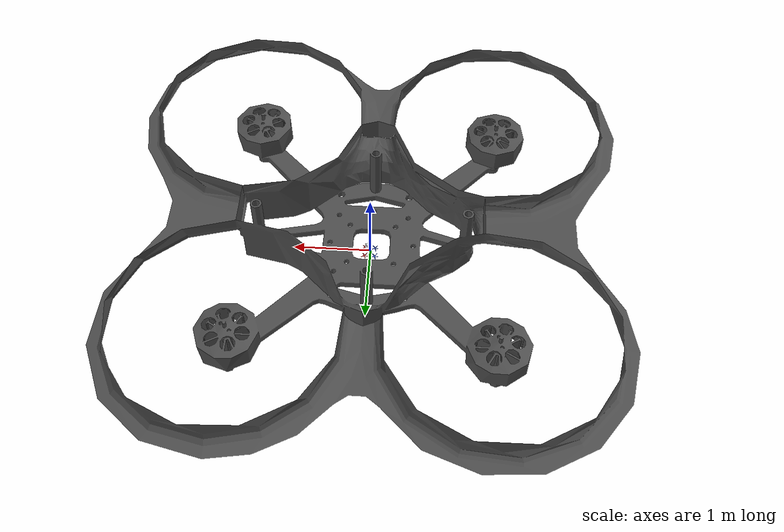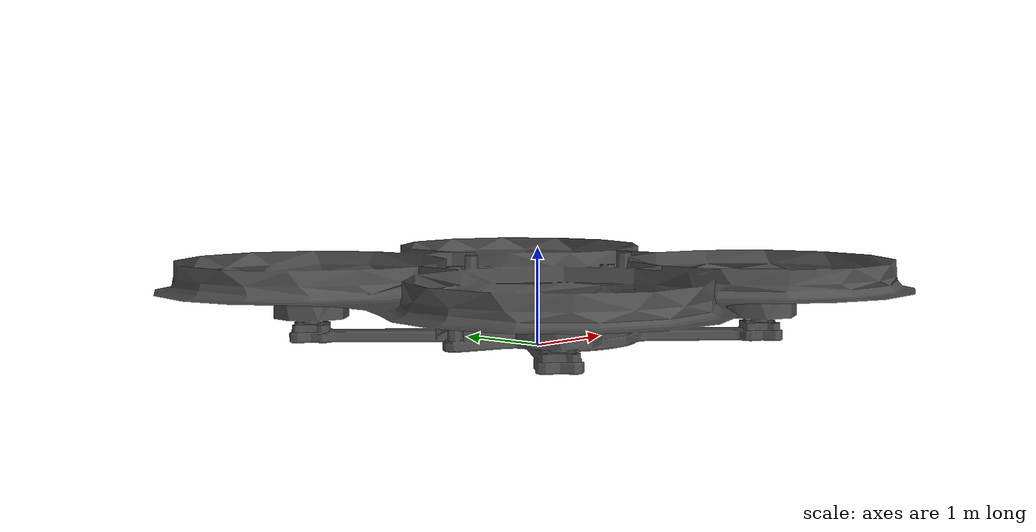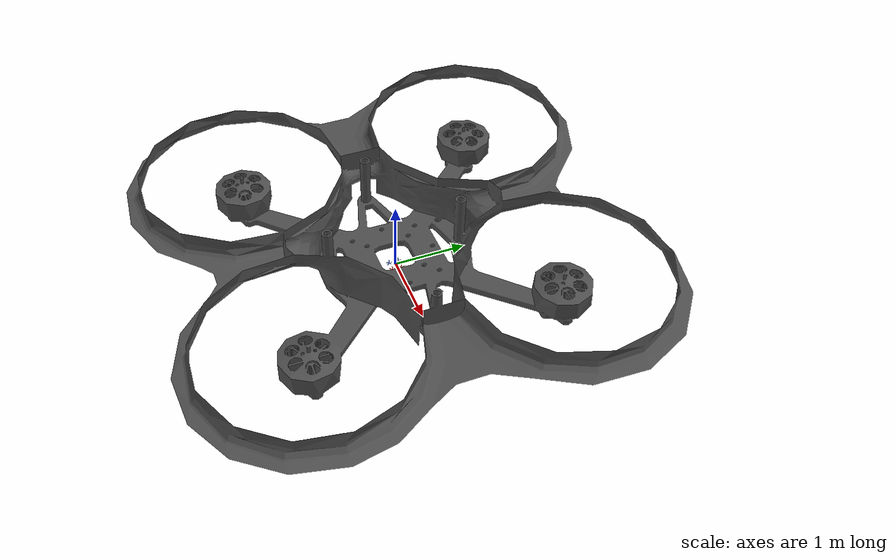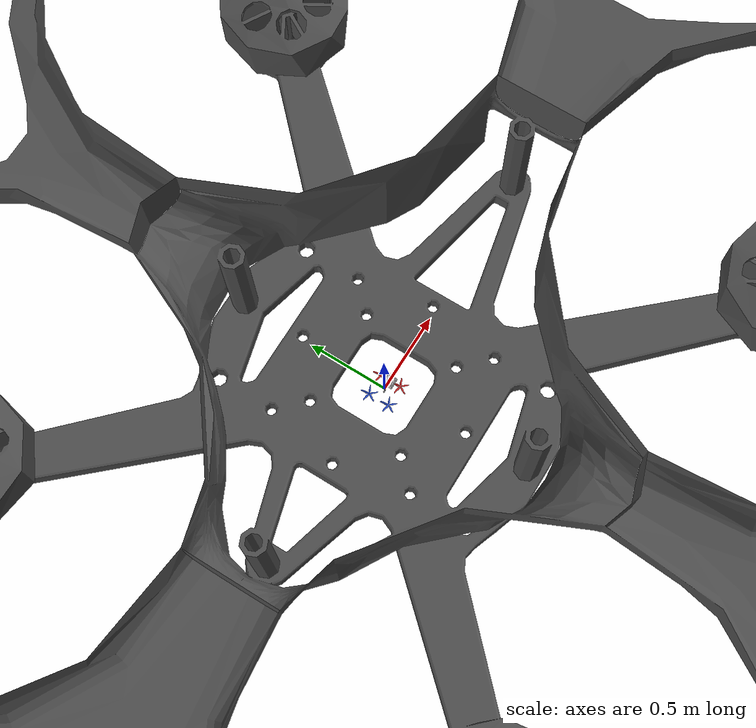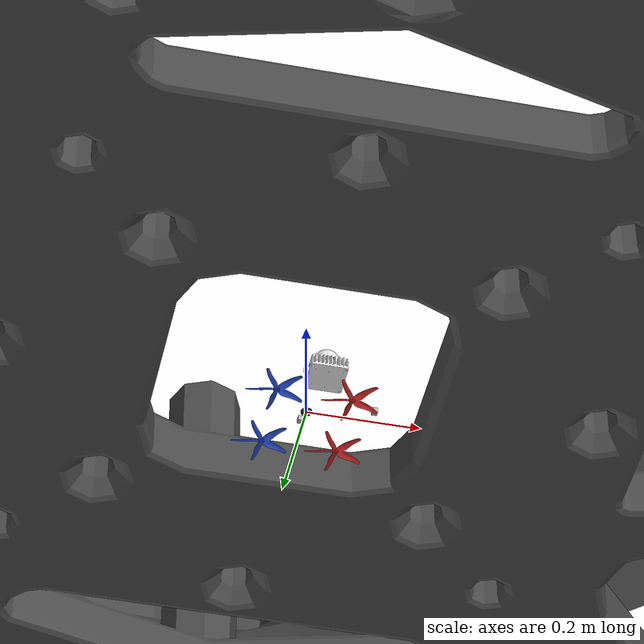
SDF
<?xml version='1.0'?>
<sdf version='1.6'>
  <model name='sunray150_with_mid360'>
    <!-- sunray body -->
    <link name='base_link'>
      <pose>0 0 0 0 0 0</pose>
      <inertial>
        <pose>0 0 0 0 0 0</pose>
        <mass>1.0</mass>
        <inertia>
          <ixx>0.0085</ixx>
          <ixy>0</ixy>
          <ixz>0</ixz>
          <iyy>0.0085</iyy>
          <iyz>0</iyz>
          <izz>0.012</izz>
        </inertia>
      </inertial>
      <collision name='base_link_inertia_collision'>
        <pose>0 0 -0.012 0 0 0</pose>
        <geometry>
          <box>
						<size>0.2 0.15 0.06</size>
          </box>
        </geometry>
        <surface>
          <contact>
            <ode>
              <min_depth>0.001</min_depth>
              <max_vel>0</max_vel>
            </ode>
          </contact>
          <friction>
            <ode/>
          </friction>
        </surface>
      </collision>
      <visual name='base_link_inertia_visual'>
        <pose>0 0 0.0525 0 0 -1.57</pose>
        <geometry>
          <mesh>
            <scale>0.03 0.03 0.03</scale>
            <uri>model://sunray150_with_mid360/meshes/sunray.stl</uri>
          </mesh>
        </geometry>
        <material>
          <script>
            <name>Gazebo/DarkGrey</name>
            <uri>file://media/materials/scripts/gazebo.material</uri>
          </script>
        </material>
      </visual>
      <gravity>1</gravity>
      <velocity_decay/>
      <self_collide>0</self_collide>
    </link>
    <link name='imu_link'>
      <pose>0 0 0 0 0 0</pose>
      <inertial>
        <pose>0 0 0 0 0 0</pose>
        <mass>0.015</mass>
        <inertia>
          <ixx>1e-05</ixx>
          <ixy>0</ixy>
          <ixz>0</ixz>
          <iyy>1e-05</iyy>
          <iyz>0</iyz>
          <izz>1e-05</izz>
        </inertia>
      </inertial>
    </link>
    <joint name='imu_joint' type='revolute'>
      <child>imu_link</child>
      <parent>base_link</parent>
      <axis>
        <xyz>1 0 0</xyz>
        <limit>
          <lower>0</lower>
          <upper>0</upper>
          <effort>0</effort>
          <velocity>0</velocity>
        </limit>
        <dynamics>
          <spring_reference>0</spring_reference>
          <spring_stiffness>0</spring_stiffness>
        </dynamics>
        <use_parent_model_frame>1</use_parent_model_frame>
      </axis>
    </joint>
    <link name='rotor_0'>
			<pose>0.065 -0.065 -0.025 0 0 0</pose>
      <inertial>
        <pose>0 0 0 0 0 0</pose>
        <mass>0.005</mass>
        <inertia>
          <ixx>9.75e-07</ixx>
          <ixy>0</ixy>
          <ixz>0</ixz>
          <iyy>0.000173104</iyy>
          <iyz>0</iyz>
          <izz>0.000174004</izz>
        </inertia>
      </inertial>
      <collision name='rotor_0_collision'>
        <pose>0 0 0 0 0 0</pose>
        <geometry>
          <cylinder>
            <length>0.005</length>
            <radius>0.05</radius>
          </cylinder>
        </geometry>
        <surface>
          <contact>
            <ode/>
          </contact>
          <friction>
            <ode/>
          </friction>
        </surface>
      </collision>
      <visual name='rotor_0_visual'>
        <pose>0 0 0 1.57 0 0</pose>
        <geometry>
          <mesh>
            <scale>0.03 0.03 0.03</scale>
            <uri>model://sunray150/meshes/sunray_cw.stl</uri>
          </mesh>
        </geometry>
        <material>
          <script>
            <name>Gazebo/Red</name>
            <uri>file://media/materials/scripts/gazebo.material</uri>
          </script>
        </material>
      </visual>
      <gravity>1</gravity>
      <velocity_decay/>
      <self_collide>0</self_collide>
    </link>
    <joint name='rotor_0_joint' type='revolute'>
      <child>rotor_0</child>
      <parent>base_link</parent>
      <axis>
        <xyz>0 0 1</xyz>
        <limit>
          <lower>-1e+16</lower>
          <upper>1e+16</upper>
        </limit>
        <dynamics>
          <spring_reference>0</spring_reference>
          <spring_stiffness>0</spring_stiffness>
        </dynamics>
        <use_parent_model_frame>1</use_parent_model_frame>
      </axis>
    </joint>
    <link name='rotor_1'>
			<pose>-0.065 0.065 -0.025 0 0 0</pose>
      <inertial>
        <pose>0 0 0 0 0 0</pose>
        <mass>0.005</mass>
        <inertia>
          <ixx>9.75e-07</ixx>
          <ixy>0</ixy>
          <ixz>0</ixz>
          <iyy>0.000173104</iyy>
          <iyz>0</iyz>
          <izz>0.000174004</izz>
        </inertia>
      </inertial>
      <collision name='rotor_1_collision'>
        <pose>0 0 0 0 0 0</pose>
        <geometry>
          <cylinder>
            <length>0.005</length>
            <radius>0.05</radius>
          </cylinder>
        </geometry>
        <surface>
          <contact>
            <ode/>
          </contact>
          <friction>
            <ode/>
          </friction>
        </surface>
      </collision>
      <visual name='rotor_1_visual'>
        <pose>0 0 0 1.57 0 0</pose>
        <geometry>
          <mesh>
            <scale>0.03 0.03 0.03</scale>
            <uri>model://sunray150/meshes/sunray_cw.stl</uri>
          </mesh>
        </geometry>
        <material>
          <script>
            <name>Gazebo/Blue</name>
            <uri>file://media/materials/scripts/gazebo.material</uri>
          </script>
        </material>
      </visual>
      <gravity>1</gravity>
      <velocity_decay/>
      <self_collide>0</self_collide>
    </link>
    <joint name='rotor_1_joint' type='revolute'>
      <child>rotor_1</child>
      <parent>base_link</parent>
      <axis>
        <xyz>0 0 1</xyz>
        <limit>
          <lower>-1e+16</lower>
          <upper>1e+16</upper>
        </limit>
        <dynamics>
          <spring_reference>0</spring_reference>
          <spring_stiffness>0</spring_stiffness>
        </dynamics>
        <use_parent_model_frame>1</use_parent_model_frame>
      </axis>
    </joint>
    <link name='rotor_2'>
			<pose>0.065 0.065 -0.025 0 0 0</pose>
      <inertial>
        <pose>0 0 0 0 0 0</pose>
        <mass>0.005</mass>
        <inertia>
          <ixx>9.75e-07</ixx>
          <ixy>0</ixy>
          <ixz>0</ixz>
          <iyy>0.000173104</iyy>
          <iyz>0</iyz>
          <izz>0.000174004</izz>
        </inertia>
      </inertial>
      <collision name='rotor_2_collision'>
        <pose>0 0 0 0 0 0</pose>
        <geometry>
          <cylinder>
            <length>0.005</length>
            <radius>0.05</radius>
          </cylinder>
        </geometry>
        <surface>
          <contact>
            <ode/>
          </contact>
          <friction>
            <ode/>
          </friction>
        </surface>
      </collision>
      <visual name='rotor_2_visual'>
        <pose>0 0 0 1.57 0 0</pose>
        <geometry>
          <mesh>
            <scale>0.03 0.03 0.03</scale>
            <uri>model://sunray150/meshes/sunray_cw.stl</uri>
          </mesh>
        </geometry>
        <material>
          <script>
            <name>Gazebo/Red</name>
            <uri>file://media/materials/scripts/gazebo.material</uri>
          </script>
        </material>
      </visual>
      <gravity>1</gravity>
      <velocity_decay/>
      <self_collide>0</self_collide>
    </link>
    <joint name='rotor_2_joint' type='revolute'>
      <child>rotor_2</child>
      <parent>base_link</parent>
      <axis>
        <xyz>0 0 1</xyz>
        <limit>
          <lower>-1e+16</lower>
          <upper>1e+16</upper>
        </limit>
        <dynamics>
          <spring_reference>0</spring_reference>
          <spring_stiffness>0</spring_stiffness>
        </dynamics>
        <use_parent_model_frame>1</use_parent_model_frame>
      </axis>
    </joint>
    <link name='rotor_3'>
			<pose>-0.065 -0.065 -0.025 0 0 0</pose>
      <inertial>
        <pose>0 0 0 0 0 0</pose>
        <mass>0.005</mass>
        <inertia>
          <ixx>9.75e-07</ixx>
          <ixy>0</ixy>
          <ixz>0</ixz>
          <iyy>0.000173104</iyy>
          <iyz>0</iyz>
          <izz>0.000174004</izz>
        </inertia>
      </inertial>
      <collision name='rotor_3_collision'>
        <pose>0 0 0 0 0 0</pose>
        <geometry>
          <cylinder>
            <length>0.005</length>
            <radius>0.05</radius>
          </cylinder>
        </geometry>
        <surface>
          <contact>
            <ode/>
          </contact>
          <friction>
            <ode/>
          </friction>
        </surface>
      </collision>
      <visual name='rotor_3_visual'>
        <pose>0 0 0 1.57 0 0</pose>
        <geometry>
          <mesh>
            <scale>0.03 0.03 0.03</scale>
            <uri>model://sunray150/meshes/sunray_cw.stl</uri>
          </mesh>
        </geometry>
        <material>
          <script>
            <name>Gazebo/Blue</name>
            <uri>file://media/materials/scripts/gazebo.material</uri>
          </script>
        </material>
      </visual>
      <gravity>1</gravity>
      <velocity_decay/>
      <self_collide>0</self_collide>
    </link>
    <joint name='rotor_3_joint' type='revolute'>
      <child>rotor_3</child>
      <parent>base_link</parent>
      <axis>
        <xyz>0 0 1</xyz>
        <limit>
          <lower>-1e+16</lower>
          <upper>1e+16</upper>
        </limit>
        <dynamics>
          <spring_reference>0</spring_reference>
          <spring_stiffness>0</spring_stiffness>
        </dynamics>
        <use_parent_model_frame>1</use_parent_model_frame>
      </axis>
    </joint>
    <include>
      <uri>model://gps</uri>
      <pose>0.0 0 0 0 0 0</pose>
      <name>gps</name>
    </include>
    <joint name='gps_joint' type='fixed'>
      <child>gps::link</child>
      <parent>base_link</parent>
    </joint>

    <plugin name='rosbag' filename='libgazebo_multirotor_base_plugin.so'>
      <robotNamespace></robotNamespace>
      <linkName>base_link</linkName>
      <rotorVelocitySlowdownSim>10</rotorVelocitySlowdownSim>
    </plugin>
    <plugin name='front_right_motor_model' filename='libgazebo_motor_model.so'>
      <robotNamespace></robotNamespace>
      <jointName>rotor_0_joint</jointName>
      <linkName>rotor_0</linkName>
      <turningDirection>ccw</turningDirection>
      <timeConstantUp>0.0125</timeConstantUp>
      <timeConstantDown>0.025</timeConstantDown>
      <maxRotVelocity>1500</maxRotVelocity>
      <motorConstant>8.54858e-06</motorConstant>
      <momentConstant>0.06</momentConstant>
      <commandSubTopic>/gazebo/command/motor_speed</commandSubTopic>
      <motorNumber>0</motorNumber>
      <rotorDragCoefficient>0.000806428</rotorDragCoefficient>
      <rollingMomentCoefficient>1e-06</rollingMomentCoefficient>
      <motorSpeedPubTopic>/motor_speed/0</motorSpeedPubTopic>
      <rotorVelocitySlowdownSim>10</rotorVelocitySlowdownSim>
    </plugin>
    <plugin name='back_left_motor_model' filename='libgazebo_motor_model.so'>
      <robotNamespace></robotNamespace>
      <jointName>rotor_1_joint</jointName>
      <linkName>rotor_1</linkName>
      <turningDirection>ccw</turningDirection>
      <timeConstantUp>0.0125</timeConstantUp>
      <timeConstantDown>0.025</timeConstantDown>
      <maxRotVelocity>1500</maxRotVelocity>
      <motorConstant>8.54858e-06</motorConstant>
      <momentConstant>0.06</momentConstant>
      <commandSubTopic>/gazebo/command/motor_speed</commandSubTopic>
      <motorNumber>1</motorNumber>
      <rotorDragCoefficient>0.000806428</rotorDragCoefficient>
      <rollingMomentCoefficient>1e-06</rollingMomentCoefficient>
      <motorSpeedPubTopic>/motor_speed/1</motorSpeedPubTopic>
      <rotorVelocitySlowdownSim>10</rotorVelocitySlowdownSim>
    </plugin>
    <plugin name='front_left_motor_model' filename='libgazebo_motor_model.so'>
      <robotNamespace></robotNamespace>
      <jointName>rotor_2_joint</jointName>
      <linkName>rotor_2</linkName>
      <turningDirection>cw</turningDirection>
      <timeConstantUp>0.0125</timeConstantUp>
      <timeConstantDown>0.025</timeConstantDown>
      <maxRotVelocity>1500</maxRotVelocity>
      <motorConstant>8.54858e-06</motorConstant>
      <momentConstant>0.06</momentConstant>
      <commandSubTopic>/gazebo/command/motor_speed</commandSubTopic>
      <motorNumber>2</motorNumber>
      <rotorDragCoefficient>0.000806428</rotorDragCoefficient>
      <rollingMomentCoefficient>1e-06</rollingMomentCoefficient>
      <motorSpeedPubTopic>/motor_speed/2</motorSpeedPubTopic>
      <rotorVelocitySlowdownSim>10</rotorVelocitySlowdownSim>
    </plugin>
    <plugin name='back_right_motor_model' filename='libgazebo_motor_model.so'>
      <robotNamespace></robotNamespace>
      <jointName>rotor_3_joint</jointName>
      <linkName>rotor_3</linkName>
      <turningDirection>cw</turningDirection>
      <timeConstantUp>0.0125</timeConstantUp>
      <timeConstantDown>0.025</timeConstantDown>
      <maxRotVelocity>1500</maxRotVelocity>
      <motorConstant>8.54858e-06</motorConstant>
      <momentConstant>0.06</momentConstant>
      <commandSubTopic>/gazebo/command/motor_speed</commandSubTopic>
      <motorNumber>3</motorNumber>
      <rotorDragCoefficient>0.000806428</rotorDragCoefficient>
      <rollingMomentCoefficient>1e-06</rollingMomentCoefficient>
      <motorSpeedPubTopic>/motor_speed/3</motorSpeedPubTopic>
      <rotorVelocitySlowdownSim>10</rotorVelocitySlowdownSim>
    </plugin>
    <plugin name='groundtruth_plugin' filename='libgazebo_groundtruth_plugin.so'>
      <robotNamespace/>
    </plugin>
    <plugin name='magnetometer_plugin' filename='libgazebo_magnetometer_plugin.so'>
      <robotNamespace/>
      <pubRate>100</pubRate>
      <noiseDensity>0.0004</noiseDensity>
      <randomWalk>6.4e-06</randomWalk>
      <biasCorrelationTime>600</biasCorrelationTime>
      <magTopic>/mag</magTopic>
    </plugin>
    <plugin name='barometer_plugin' filename='libgazebo_barometer_plugin.so'>
      <robotNamespace/>
      <pubRate>50</pubRate>
      <baroTopic>/baro</baroTopic>
    </plugin>
    <plugin name='mavlink_interface' filename='libgazebo_mavlink_interface.so'>
      <robotNamespace/>
      <imuSubTopic>/imu</imuSubTopic>
      <gpsSubTopic>/gps</gpsSubTopic>
      <magSubTopic>/mag</magSubTopic>
      <baroSubTopic>/baro</baroSubTopic>
      <mavlink_addr>INADDR_ANY</mavlink_addr>
      <mavlink_tcp_port>4560</mavlink_tcp_port>
      <serialEnabled>false</serialEnabled>
      <serialDevice>/dev/ttyACM0</serialDevice>
      <baudRate>921600</baudRate>
      <qgc_addr>INADDR_ANY</qgc_addr>
      <qgc_udp_port>14550</qgc_udp_port>
      <hil_mode>false</hil_mode>
      <hil_state_level>false</hil_state_level>
      <enable_lockstep>true</enable_lockstep>
      <use_tcp>true</use_tcp>
      <motorSpeedCommandPubTopic>/gazebo/command/motor_speed</motorSpeedCommandPubTopic>
      <control_channels>
        <channel name='rotor1'>
          <input_index>0</input_index>
          <input_offset>0</input_offset>
          <input_scaling>1200</input_scaling>
          <zero_position_disarmed>0</zero_position_disarmed>
          <zero_position_armed>100</zero_position_armed>
          <joint_control_type>velocity</joint_control_type>
        </channel>
        <channel name='rotor2'>
          <input_index>1</input_index>
          <input_offset>0</input_offset>
          <input_scaling>1200</input_scaling>
          <zero_position_disarmed>0</zero_position_disarmed>
          <zero_position_armed>100</zero_position_armed>
          <joint_control_type>velocity</joint_control_type>
        </channel>
        <channel name='rotor3'>
          <input_index>2</input_index>
          <input_offset>0</input_offset>
          <input_scaling>1200</input_scaling>
          <zero_position_disarmed>0</zero_position_disarmed>
          <zero_position_armed>100</zero_position_armed>
          <joint_control_type>velocity</joint_control_type>
        </channel>
        <channel name='rotor4'>
          <input_index>3</input_index>
          <input_offset>0</input_offset>
          <input_scaling>1200</input_scaling>
          <zero_position_disarmed>0</zero_position_disarmed>
          <zero_position_armed>100</zero_position_armed>
          <joint_control_type>velocity</joint_control_type>
        </channel>
      </control_channels>
    </plugin>
    <static>0</static>
    <plugin name='gazebo_imu_plugin' filename='libgazebo_imu_plugin.so'>
      <robotNamespace></robotNamespace>
      <linkName>imu_link</linkName>
      <imuTopic>/imu</imuTopic>
      <gyroscopeNoiseDensity>0.0003394</gyroscopeNoiseDensity>
      <gyroscopeRandomWalk>3.8785e-05</gyroscopeRandomWalk>
      <gyroscopeBiasCorrelationTime>1000.0</gyroscopeBiasCorrelationTime>
      <gyroscopeTurnOnBiasSigma>0.0087</gyroscopeTurnOnBiasSigma>
      <accelerometerNoiseDensity>0.004</accelerometerNoiseDensity>
      <accelerometerRandomWalk>0.006</accelerometerRandomWalk>
      <accelerometerBiasCorrelationTime>300.0</accelerometerBiasCorrelationTime>
      <accelerometerTurnOnBiasSigma>0.196</accelerometerTurnOnBiasSigma>
    </plugin>

    <plugin name="p3d_base_controller" filename="libgazebo_ros_p3d.so">
      <alwaysOn>true</alwaysOn>
      <updateRate>50.0</updateRate>
      <bodyName>base_link</bodyName>
      <topicName>sunray/gazebo_pose</topicName>
      <gaussianNoise>0.00</gaussianNoise>
      <frameName>world</frameName>
      <xyzOffsets>0 0 0</xyzOffsets>
      <rpyOffsets>0 0 0</rpyOffsets>
    </plugin>

    <include>
      <uri>model://camera_front</uri>
      <pose>0.12 0 0.025 0 0 0</pose>
    </include>
    <!-- 前视相机关节 -->
    <joint name="Monocular_front_joint" type="fixed">
      <child>camera_front::Monocular_front_link</child>
      <parent>base_link</parent>
      <axis>
        <xyz>0 0 1</xyz>
        <limit>
          <upper>0</upper>
          <lower>0</lower>
        </limit>
      </axis>
    </joint>

    <include>
      <uri>model://camera_down</uri>
      <pose>-0.01 0 -0.02 0 1.5707963 3.14</pose> <!--位置-->
    </include>
    <!-- 下视相机关节 -->
    <joint name="Monocular_down_joint" type="fixed">
      <child>camera_down::Monocular_down_link</child> <!--子link-->
      <parent>base_link</parent><!--父link-->
      <axis>
        <xyz>0 0 1</xyz><!--xyz标签定义轴的方向，是单位向量，默认值为0 0 1，参考系一般为joint参考系-->
        <limit>
          <upper>0</upper>
          <lower>0</lower>
        </limit>
      </axis>
    </joint>

    <include>
      <uri>model://livox_mid360</uri>
      <pose>0.036 -0.0155 0.075 0 0 0</pose>
    </include>
    <joint name="mid360_joint" type="fixed">
      <child>livox_mid360::base_link</child>
      <parent>base_link</parent>
      <axis>
        <xyz>0 0 1</xyz>
        <limit>
          <upper>0</upper>
          <lower>0</lower>
        </limit>
      </axis>
    </joint>

  </model>
</sdf>

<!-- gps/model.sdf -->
<sdf version="1.6">
  <model name="gps">
    <link name="link">
      <pose>0 0 0 0 0 0</pose>
      <inertial>
        <pose>0 0 0 0 0 0</pose>
        <mass>0.015</mass>
        <inertia>
          <ixx>1e-05</ixx>
          <ixy>0</ixy>
          <ixz>0</ixz>
          <iyy>1e-05</iyy>
          <iyz>0</iyz>
          <izz>1e-05</izz>
        </inertia>
      </inertial>
      <visual name="visual">
        <geometry>
          <cylinder>
            <radius>0.01</radius>
            <length>0.002</length>
          </cylinder>
        </geometry>
        <material>
          <script>
            <name>Gazebo/Black</name>
            <uri>file://usr/share/gz/gz-sim8/media/gazebo.material</uri>
          </script>
        </material>
      </visual>
      <sensor name="gps" type="gps">
        <pose>0 0 0 0 0 0</pose>
        <update_rate>5.0</update_rate>
        <always_on>true</always_on>
        <visualize>false</visualize>
        <!-- GpsSensor noise currently not used -->
        <plugin name="gps_plugin" filename="libgazebo_gps_plugin.so">
          <robotNamespace></robotNamespace>
          <gpsNoise>true</gpsNoise>
          <gpsXYRandomWalk>2.0</gpsXYRandomWalk>
          <gpsZRandomWalk>4.0</gpsZRandomWalk>
          <gpsXYNoiseDensity>2.0e-4</gpsXYNoiseDensity>
          <gpsZNoiseDensity>4.0e-4</gpsZNoiseDensity>
          <gpsVXYNoiseDensity>0.2</gpsVXYNoiseDensity>
          <gpsVZNoiseDensity>0.4</gpsVZNoiseDensity>
        </plugin>
      </sensor>
    </link>
  </model>
</sdf>

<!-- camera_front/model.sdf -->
<sdf version='1.6'>
  <model name='camera_front'>
    <!-- 前视相机 -->
    <link name='Monocular_front_link'>
      <inertial>
        <mass>0.001</mass>
        <inertia>
          <ixx>4.15e-6</ixx>
          <ixy>0</ixy>
          <ixz>0</ixz>
          <iyy>2.407e-6</iyy>
          <iyz>0</iyz>
          <izz>2.407e-6</izz>
        </inertia>
      </inertial>
      <visual name='visual'>
        <geometry>
          <box>
            <size>0.01 0.01 0.01</size>
          </box>
        </geometry>
      </visual>
      <sensor name='camera' type='camera'>
        <camera name='__default__'>
          <!-- FOV,71度 -->
          <horizontal_fov>1.239</horizontal_fov>
          <image>
            <width>640</width>
            <height>480</height>
          </image>
          <clip>
            <near>0.1</near>
            <far>100</far>
          </clip>
          <noise>
            <type>gaussian</type>
            <mean>0.0</mean>
            <stddev>0.001</stddev>
          </noise>
        </camera>
        <always_on>1</always_on>
        <update_rate>30</update_rate>
        <visualize>1</visualize>
        <plugin name='camera_plugin' filename='libgazebo_ros_camera.so'>
            <robotNamespace>/sunray/camera</robotNamespace>
            <alwaysOn>true</alwaysOn>
            <imageTopicName>image_raw</imageTopicName>
            <cameraInfoTopicName>camera_info</cameraInfoTopicName>
            <updateRate>30.0</updateRate>
            <cameraName>monocular_front</cameraName>
            <frameName>/monocular_front_link</frameName>
            <CxPrime>320</CxPrime>
            <Cx>320</Cx>
            <Cy>240</Cy>
            <hackBaseline>0</hackBaseline>
            <focalLength>448.710659</focalLength>
            <distortionK1>0.0</distortionK1>
            <distortionK2>0.0</distortionK2>
            <distortionK3>0.0</distortionK3>
            <distortionT1>0.0</distortionT1>
            <distortionT2>0.0</distortionT2>
        </plugin>
      </sensor>
      <self_collide>0</self_collide>
      <kinematic>0</kinematic>
    </link>

  </model>
</sdf>

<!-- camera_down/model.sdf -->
<sdf version='1.6'>
  <model name='camera_down'>

    <!-- 下视相机link -->
    <link name='Monocular_down_link'>
      <!--物理属性-->
      <inertial>
      <pose>0 0 0 0.1 0 0</pose>
        <mass>0.001</mass> <!--质量-->
         <!--惯性标签，定义模型当前link的惯性矩，是一个对称正定3x3矩阵-->
        <inertia>
          <ixx>4.15e-6</ixx>
          <ixy>0</ixy>
          <ixz>0</ixz>
          <iyy>2.407e-6</iyy>
          <iyz>0</iyz>
          <izz>2.407e-6</izz>
        </inertia>
      </inertial>
      <!--可视化标签，定义一些图形界面的视觉效果-->
      <visual name='visual'>
      <!--geometry标签，定义当前link的几何形状-->
        <geometry>
          <box>
            <size>0.01 0.01 0.01</size>
          </box>
        </geometry>
      </visual>
      <!--传感器标签，定义一个名叫camera的传感器，它的类型是camera-->
      <sensor name='camera' type='camera'>
      <!--相机标签，在其中定义一些相机的属性-->
        <camera name='__default__'>
          <!-- FOV,71度 -->
          <horizontal_fov>1.239</horizontal_fov><!--定义水平视野场，此处为71度-->
          <!--image标签，功能是定义以像素为单位的图片大小和图片格式-->
          <image>
            <width>640</width>
            <height>480</height>
          </image>
          <!--定义远、近剪裁面，不会渲染远、近剪裁平面之外的对象-->
          <clip>
            <near>0.1</near>
            <far>100</far>
          </clip>
           <!--噪音标签，定义噪音模型，它将应用到生成的图片上-->
          <noise>
            <type>gaussian</type>
            <mean>0.0</mean>
            <stddev>0.001</stddev>
          </noise>
        </camera>

        <!--bool值，定义传感器是否更新，1为true,即传感器会根据update_rate参数定义的频率更新-->
        <always_on>1</always_on>
         <!--更新频率参数，默认值为0-->
        <update_rate>30</update_rate>
        <!--传感器可视化参数，bool变量，1即为true,表示允许传感器在图形界面被观察到-->
        <visualize>1</visualize>

        <plugin name='camera_plugin' filename='libgazebo_ros_camera.so'>
            <robotNamespace>/sunray/camera</robotNamespace>
            <alwaysOn>true</alwaysOn>
            <imageTopicName>image_raw</imageTopicName><!--申明摄像头发布的消息话题为image_raw-->
            <cameraInfoTopicName>camera_info</cameraInfoTopicName><!--用于发布相机信息的主题名称为camera_info-->
            <updateRate>30.0</updateRate><!--更新频率为30-->
            <cameraName>monocular_down</cameraName><!--摄像机命名为monocular_down-->
            <frameName>/monocular_down_link</frameName><!--定义数据所在的参考系为/monocular_down_link-->
            <!--相机本身的信息-->
            <CxPrime>320</CxPrime>
            <Cx>320</Cx>
            <Cy>240</Cy>
            <hackBaseline>0</hackBaseline>
            <focalLength>448.710659</focalLength>
            <distortionK1>0.0</distortionK1>
            <distortionK2>0.0</distortionK2>
            <distortionK3>0.0</distortionK3>
            <distortionT1>0.0</distortionT1>
            <distortionT2>0.0</distortionT2>
        </plugin>

      </sensor>
      <self_collide>0</self_collide><!--Bool变量，0为false,即不会Model下的其他link发生碰撞-->
      <kinematic>0</kinematic><!--bool变量，0为false,如果为true，则表示本link仅为运动学link-->
    </link>
  </model>
</sdf>

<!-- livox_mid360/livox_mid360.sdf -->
<sdf version='1.6'>
  <model name='livox_mid360'>
    <link name='link'>
      <pose frame=''>0 0 0 0 -0 0</pose>
      <inertial>
        <pose frame=''>0 0 0 0 0 0</pose>
        <mass>0.5</mass>
        <inertia>
          <ixx>0.0025</ixx>
          <ixy>0</ixy>
          <ixz>0</ixz>
          <iyy>0.0025</iyy>
          <iyz>0</iyz>
          <izz>0.0042</izz>
        </inertia>
      </inertial>
      <collision name='link_fixed_joint_lump__oasis_300_collision'>
        <pose frame=''>0 0 0.03 0 0 0</pose>
        <geometry>
          <box>
						<size>0.06 0.06 0.06</size>
          </box>
        </geometry>
        <surface>
          <contact>
            <ode>
              <min_depth>0.001</min_depth>
              <max_vel>0</max_vel>
            </ode>
          </contact>
          <friction>
            <ode/>
          </friction>
        </surface>
      </collision>
      <visual name='link_fixed_joint_lump__oasis_300_visual'>
        <pose frame=''>0.03 -0.03 0 1.57 0 3.14159</pose>
        <geometry>
          <mesh>
            <scale>0.001 0.001 0.001</scale>
            <uri>model://livox_mid360/meshes/mid-360-asm.STL</uri>
          </mesh>
        </geometry>
        <material>
          <script>
            <name>Gazebo/White</name>
            <uri>file://media/materials/scripts/gazebo.material</uri>
          </script>
        </material>
      </visual>
      <gravity>1</gravity>
      <velocity_decay/>
      <sensor name='laser_livox' type='ray'>
        <visualize>1</visualize>
        <update_rate>10</update_rate>
        <plugin name='gazebo_ros_laser_controller' filename='liblivox_laser_simulation.so'>
          <ray>
            <scan>
              <horizontal>
                <samples>100</samples>
                <resolution>1</resolution>
                <min_angle>-0.614355377778</min_angle>
                <max_angle>0.614355377778</max_angle>
              </horizontal>
              <vertical>
                <samples>50</samples>
                <resolution>1</resolution>
                <min_angle>-0.614355377778</min_angle>
                <max_angle>0.614355377778</max_angle>
              </vertical>
            </scan>
            <range>
              <min>0.1</min>
              <max>200.0</max>
              <resolution>0.002</resolution>
            </range>
            <noise>
              <type>gaussian</type>
              <mean>0.0</mean>
              <stddev>0.01</stddev>
            </noise>
          </ray>
          <visualize>1</visualize>
          <samples>10000</samples>
          <downsample>1</downsample>
          <csv_file_name>package://sunray_simulator/models/livox_mid360/scan_mode/mid360.csv</csv_file_name>
          <topic_name>livox</topic_name>
          <frameName>laser_3d</frameName>
          <publish_pointcloud_type>1</publish_pointcloud_type>
        </plugin>
        <pose frame=''>0 0 0.3 0 0 0</pose>
      </sensor>
    </link>
  </model>
</sdf>
